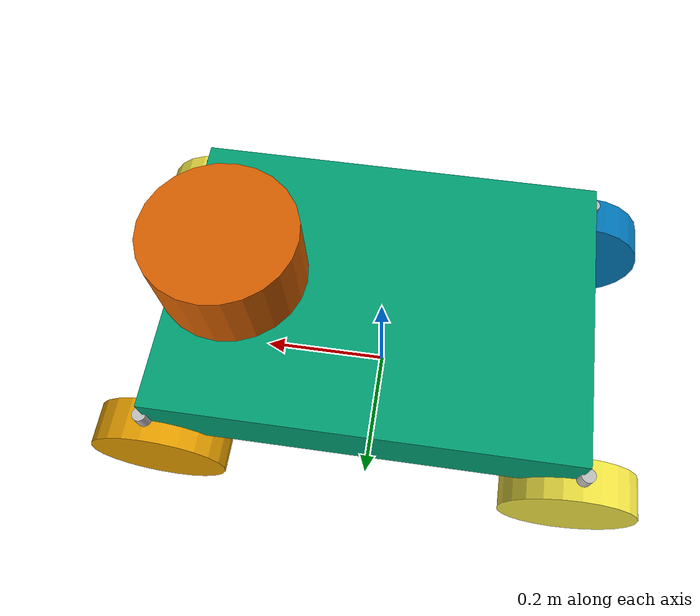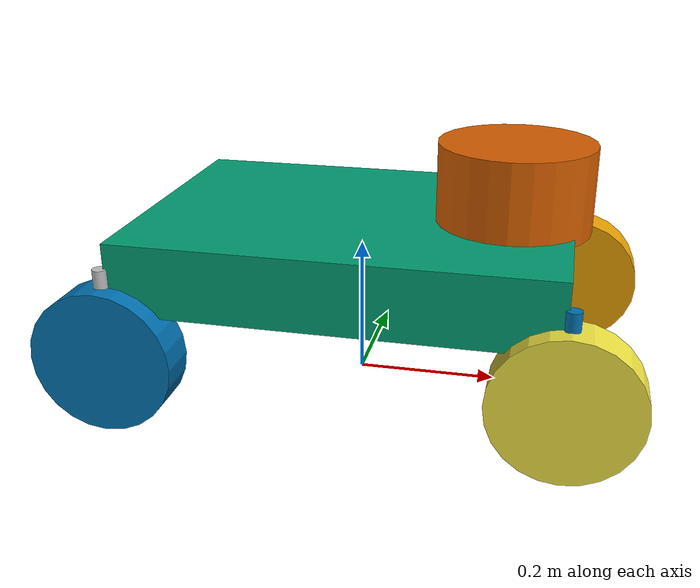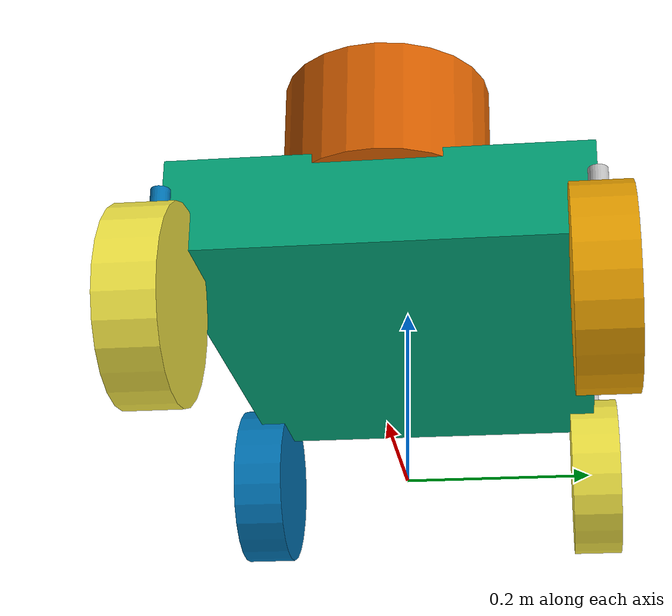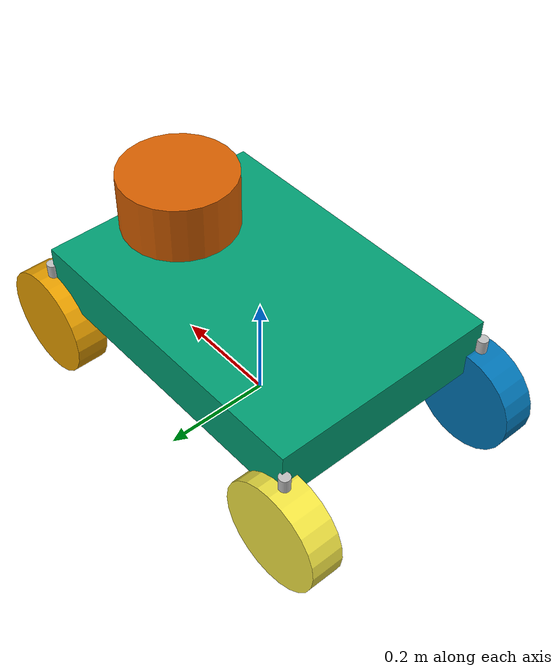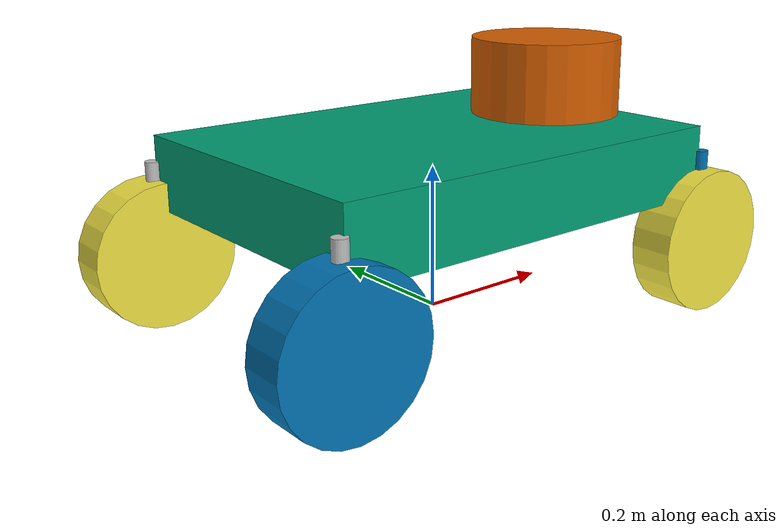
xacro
<?xml version="1.0"?>
<robot xmlns:xacro="http://www.ros.org/wiki/xacro" name="dummy2">

    <xacro:property name="base_width" value="0.43"/>
    <xacro:property name="base_length" value="0.60"/>
    <xacro:property name="base_height" value="0.10"/>

    <xacro:property name="wheel_radius" value="0.1"/>
    <xacro:property name="wheel_width" value="0.06"/>

    <xacro:property name="wheel_ygap" value="0.02"/>

    <xacro:property name="wheel_xoff" value="0.305"/>
    <xacro:property name="wheel_zoff" value="0.02"/>
    <xacro:property name="shock_travel" value = "0.09"/>

    <xacro:macro name="box_inertia" params="m w h d">
            <inertia ixx="${(m/12)*(h*h + d*d)}" ixy="0.0" ixz="0.0"
                     iyy="${(m/12)*(w*w + d*d)}" iyz="0.0"
                     izz="${(m/12)*(w*w + h*h)}"/>
    </xacro:macro>

    <xacro:macro name="wheel_inertia" params="m r h">
        <inertial>
            <mass value="${m}"/>
            <inertia ixx="${(m/12) * (3*r*r + h*h)}" ixy="0.0" ixz="0.0"
                     iyy="${(m/12) * (3*r*r + h*h)}" iyz="0.0"
                     izz="${(m/2) * (r*r)}"/>
        </inertial>
    </xacro:macro>

  <xacro:macro name="sphere_inertia" params="m r">
        <inertial>
            <mass value="${m}"/>
            <inertia ixx="${(2/5) * m * (r*r)}" ixy="0.0" ixz="0.0"
                    iyy="${(2/5) * m * (r*r)}" iyz="0.0"
                    izz="${(2/5) * m * (r*r)}"/>
        </inertial>
  </xacro:macro>

    <link name="base_footprint"/>

    <link name="base_link"/>

    <joint name="base_joint" type="fixed">
      <origin xyz="0.0 0.0 0.0" rpy="0.0 0.0 0.0"/>
      <parent link="base_footprint"/>
      <child link="base_link"/>
    </joint>

    <link name="body_link">
        <visual>
            <geometry>
                <box size="${base_length} ${base_width} ${base_height}"/>
            </geometry>
        </visual>
        <collision>
            <geometry>
                <box size="${base_length} ${base_width} ${base_height}"/>
            </geometry>
        </collision>
        <inertial>
          <mass value="2.6"/>
          <xacro:box_inertia m="2.6" w="${base_width}" d="${base_length}" h="${base_height}"/>
        </inertial>
    </link>

    <joint name="body_joint" type="fixed">
        <origin xyz="0.0 0.0 ${2*base_height}" rpy="0.0 0.0 0.0"/>
        <parent link="base_link"/>
        <child link="body_link"/>
    </joint>

     <link name="back_left_wheel_link">
      <xacro:wheel_inertia m="0.1" r="${wheel_radius}" h="${wheel_width}"/>
      <visual>
        <geometry>
          <cylinder length="${wheel_width}" radius="${wheel_radius}"/>
        </geometry>
      </visual>
      <collision>
        <geometry>
          <cylinder length="${wheel_width}" radius="${wheel_radius}"/>
        </geometry>
      </collision>
    </link>

    <link name="back_right_wheel_link">
      <xacro:wheel_inertia m="0.1" r="${wheel_radius}" h="${wheel_width}"/>
      <visual>
        <geometry>
          <cylinder length="${wheel_width}" radius="${wheel_radius}"/>
        </geometry>
      </visual>
      <collision>
        <geometry>
          <cylinder length="${wheel_width}" radius="${wheel_radius}"/>
        </geometry>
      </collision>
    </link>

    <link name="back_left_wheel_shock">
        <visual>
        <origin xyz="0 0 0.1" rpy="0 0 0"/>
        <geometry>
          <cylinder length="0.05" radius="0.01"/>
        </geometry>
        <material name="silver">
          <color rgba="0.75 0.75 0.75 1"/>
        </material>
      </visual>
      <collision>
        <origin xyz="0 0 0.1" rpy="0 0 0"/>
        <geometry>
          <cylinder length="0.05" radius="0.01"/>
        </geometry>
      </collision>
      <inertial>
        <mass value="0.01"/>
        <inertia ixx="0.015" iyy="0.0375" izz="0.0375"
                ixy="0" ixz="0" iyz="0"/>
      </inertial>
    </link>

    <link name="back_right_wheel_shock">
        <visual>
        <origin xyz="0 0 0.1" rpy="0 0 0"/>
        <geometry>
          <cylinder length="0.05" radius="0.01"/>
        </geometry>
        <material name="silver">
          <color rgba="0.75 0.75 0.75 1"/>
        </material>
      </visual>
      <collision>
        <origin xyz="0 0 0.1" rpy="0 0 0"/>
        <geometry>
          <cylinder length="0.05" radius="0.01"/>
        </geometry>
      </collision>
      <inertial>
        <mass value="0.01"/>
        <inertia ixx="0.015" iyy="0.0375" izz="0.0375"
                ixy="0" ixz="0" iyz="0"/>
      </inertial>
    </link>

    <joint name="back_left_shock_joint" type="prismatic">
      <origin xyz="${-wheel_xoff} ${(base_width/2)} ${shock_travel}" rpy="0.0 0.0 0.0"/>
      <parent link="base_link"/>
      <child link="back_left_wheel_shock"/>
      <axis xyz="0 0 1"/>
      <limit lower="0" upper="${shock_travel}" effort="100" velocity="100"/>
    </joint>

    <joint name="back_left_wheel_joint" type="continuous">
      <origin xyz="0.0 0.0 0.0" rpy="${-pi/2} 0.0 0.0"/>
      <parent link="back_left_wheel_shock"/>
      <child link="back_left_wheel_link"/>
      <axis xyz="0 0 1"/>
      <limit effort="10000" velocity="500"/>
    </joint>

    <joint name="back_right_shock_joint" type="prismatic">
      <origin xyz="${-wheel_xoff} ${-(base_width/2)} ${shock_travel}" rpy="0.0 0.0 0.0"/>
      <parent link="base_link"/>
      <child link="back_right_wheel_shock"/>
      <axis xyz="0 0 1"/>
      <limit lower="0" upper="${shock_travel}" effort="100" velocity="100"/>
    </joint>

    <joint name="back_right_wheel_joint" type="continuous">
      <origin xyz="0.0 0.0 0.0" rpy="${-pi/2} 0.0 0.0"/>
      <parent link="back_right_wheel_shock"/>
      <child link="back_right_wheel_link"/>
      <axis xyz="0 0 1"/>
      <limit effort="10000" velocity="500"/>
    </joint>

    <link name="front_left_wheel_steer">
      <visual>
        <geometry>
          <cylinder length="0.01" radius="0.01"/>
        </geometry>
        <material name="black">
          <color rgba="0 0 0 1"/>
        </material>
      </visual>
      <collision>
        <geometry>
          <cylinder length="0.01" radius="0.01"/>
        </geometry>
      </collision>
      <inertial>
        <mass value="0.1"/>
        <inertia ixx="5.1458e-5" iyy="5.1458e-5" izz="6.125e-5"
                 ixy="0" ixz="0" iyz="0"/>
      </inertial>
    </link>
    <link name="front_left_wheel">
      <visual>
        <geometry>
          <cylinder radius="${wheel_radius}" length="${wheel_width}" />
        </geometry>
      </visual>
      <collision>
        <geometry>
          <cylinder radius="${wheel_radius}" length="${wheel_width}"/>
        </geometry>
      </collision>
      <xacro:wheel_inertia m="0.1" r="${wheel_radius}" h="${wheel_width}"/>
    </link>

    <link name="front_left_wheel_shock">
      <visual>
        <origin xyz="0 0 0.1" rpy="0 0 0"/>
        <geometry>
          <cylinder length="0.05" radius="0.01"/>
        </geometry>
        <material name="silver">
          <color rgba="0.75 0.75 0.75 1"/>
        </material>
      </visual>
      <collision>
        <origin xyz="0 0 0.1" rpy="0 0 0"/>
        <geometry>
          <cylinder length="0.05" radius="0.01"/>
        </geometry>
      </collision>
      <inertial>
        <mass value="0.01"/>
        <inertia ixx="0.015" iyy="0.0375" izz="0.0375"
                ixy="0" ixz="0" iyz="0"/>
      </inertial>
    </link>

    <joint name="front_left_shock_joint" type="prismatic">
      <limit lower="0" upper="${shock_travel}" effort="100" velocity="100"/>
      <axis xyz="0 0 1"/>
      <parent link="base_link"/>
      <child link="front_left_wheel_shock"/>
      <origin rpy="0 0 0" xyz="${wheel_xoff} ${(base_width/2)} ${shock_travel}"/>
    </joint>

    <joint name="front_left_wheel_steer_joint" type="revolute">
      <limit lower="-1" upper="1" effort="1" velocity="5"/>
      <axis xyz="0 0 1"/>
      <parent link="front_left_wheel_shock"/>
      <child link="front_left_wheel_steer"/>
      <origin rpy="0 0 0" xyz="0 0 0"/>
    </joint>

    <joint name="front_left_wheel_joint" type="continuous">
      <axis xyz="0 0 1"/>
      <parent link="front_left_wheel_steer"/>
      <child link="front_left_wheel"/>
      <origin rpy="${-pi/2} 0 0" xyz="0 0 0"/>
    </joint>

    <link name="front_right_wheel_steer">
      <visual>
        <geometry>
          <cylinder length="0.01" radius="0.01"/>
        </geometry>
        <material name="black">
          <color rgba="0 0 0 1"/>
        </material>
      </visual>
      <collision>
        <geometry>
          <cylinder length="0.01" radius="0.01"/>
        </geometry>
      </collision>
      <inertial>
        <mass value="0.1"/>
        <inertia ixx="5.1458e-5" iyy="5.1458e-5" izz="6.125e-5"
                ixy="0" ixz="0" iyz="0"/>
      </inertial>
    </link>

    <link name="front_right_wheel">
      <visual>
        <geometry>
          <cylinder radius="${wheel_radius}" length="${wheel_width}"/>
        </geometry>
      </visual>
      <collision>
        <geometry>
          <cylinder radius="${wheel_radius}" length="${wheel_width}"/>
        </geometry>
      </collision>
      <xacro:wheel_inertia m="0.1" r="${wheel_radius}" h="${wheel_width}"/>
    </link>

    <link name="front_right_wheel_shock">
      <visual>
      <origin xyz="0 0 0.1" rpt="0 0 0"/>
      <geometry>
        <cylinder radius="0.01" length="0.05"/>
      </geometry>
      </visual>
      <collision>
        <origin xyz="0 0 0.1" rpy="0 0 0"/>
        <geometry>
          <cylinder length="0.05" radius="0.01"/>
        </geometry>
      </collision>
      <inertial>
        <mass value="0.01"/>
        <inertia ixx="0.015" iyy="0.0375" izz="0.0375"
                ixy="0" ixz="0" iyz="0"/>
      </inertial>
    </link>

    <joint name="front_right_shock_joint" type="prismatic">
      <limit lower="0.0" upper="${shock_travel}" effort="100" velocity="100"/>
      <axis xyz="0.0 0.0 1.0"/>
      <parent link="base_link"/>
      <child link="front_right_wheel_shock"/>
      <origin rpy="0 0 0" xyz="${wheel_xoff} ${-(base_width/2)} ${shock_travel}"/>
    </joint>

    <joint name="front_right_wheel_steer_joint" type="revolute">
      <limit lower="-1" upper="1" effort="1" velocity="5"/>
      <axis xyz="0.0 0.0 1.0"/>
      <parent link="front_right_wheel_shock"/>
      <child link="front_right_wheel_steer"/>
      <origin xyz="0.0 0.0 0.0" rpy="0.0 0.0 0.0"/>
    </joint>

    <joint name="front_right_wheel_joint" type="continuous">
      <axis xyz="0 0.0 1.0"/>
      <parent link="front_right_wheel_steer"/>
      <child link="front_right_wheel"/>
      <origin rpy="${-pi/2} 0.0 0.0" xyz="0 0 0"/>
    </joint>

  <link name="lidar_link">
    <inertial>
      <origin xyz="0 0 0" rpy="0 0 0"/>
      <mass value="1e-5"/>
      <inertia ixx="1e-6"  ixy="0"  ixz="0" iyy="1e-6" iyz="0" izz="1e-6"/>
    </inertial>

    <collision>
      <origin xyz="0 0 0" rpy="0 0 0"/>
      <geometry>
         <cylinder radius="0.108" length="0.22"/>
      </geometry>
    </collision>

    <visual>
      <origin xyz="0 0 0" rpy="0 0 0"/>
      <geometry>
         <cylinder radius="0.108" length="0.12"/>
      </geometry>
    </visual>
  </link>

  <joint name="lidar_joint" type="fixed">
    <parent link="base_link"/>
    <child link="lidar_link"/>
    <origin xyz="0.215 0.0 0.30" rpy="0 0 0"/>
  </joint>

  <gazebo reference="lidar_link">
    <sensor name="lidar" type="ray">
      <always_on>true</always_on>
      <visualize>false</visualize>
      <update_rate>3</update_rate>
      <ray>
        <scan>
          <horizontal>
            <samples>360</samples>
            <resolution>1</resolution>
            <min_angle>-3.14159</min_angle>
            <max_angle>3.14159</max_angle>
          </horizontal>
        </scan>
        <range>
          <min>0.12</min>
          <max>10.0</max>
          <resolution>0.1</resolution>
        </range>
        <noise>
          <type>gaussian</type>
          <mean>0.0</mean>
          <stddev>0.01</stddev>
        </noise>
      </ray>
      <plugin name="scan" filename="libgazebo_ros_ray_sensor.so">
        <ros>
          <remapping>~/out:=scan</remapping>
        </ros>
        <output_type>sensor_msgs/LaserScan</output_type>
        <frame_name>lidar_link</frame_name>
      </plugin>
    </sensor>
  </gazebo>

  <gazebo>
    <plugin name="ackermann_gazebo_plugin" filename="libackermann_gazebo_plugin.so">
    </plugin>
  </gazebo>
</robot>
